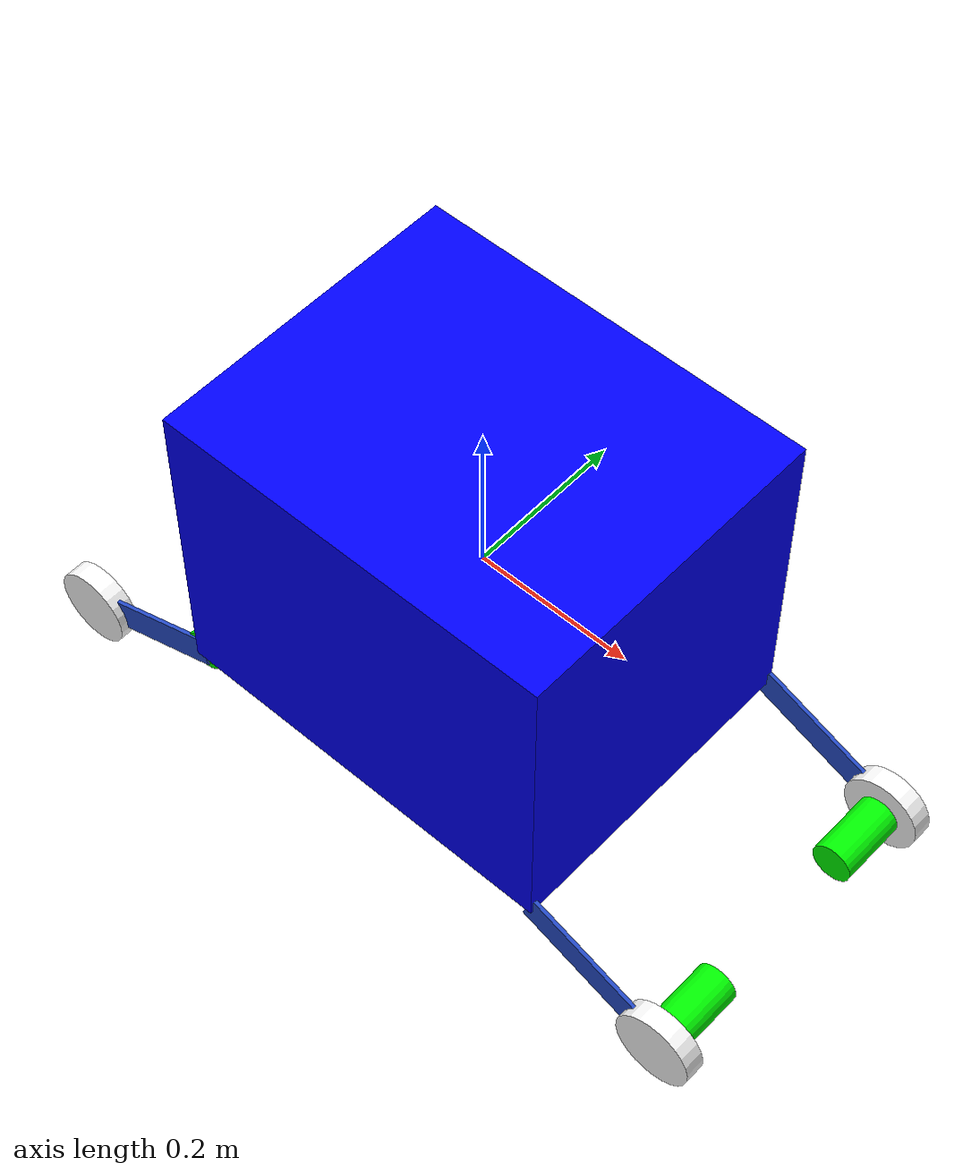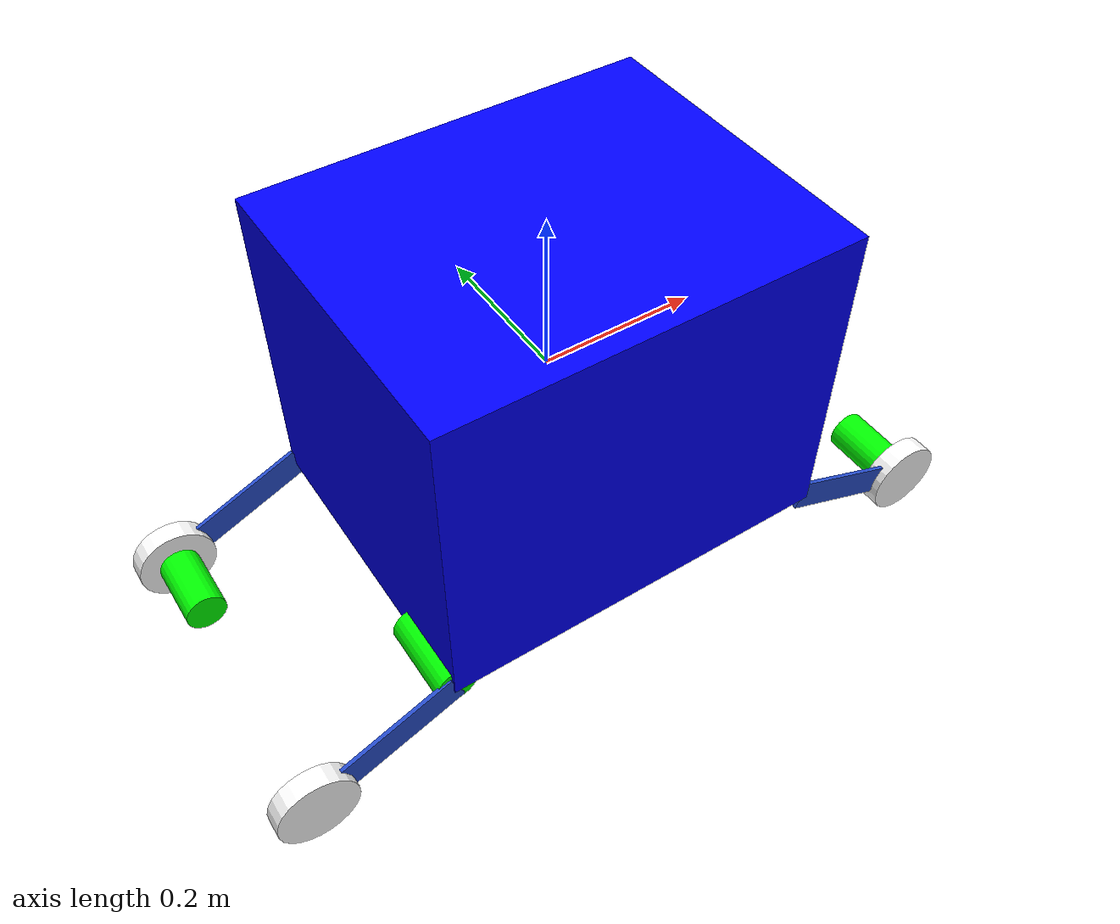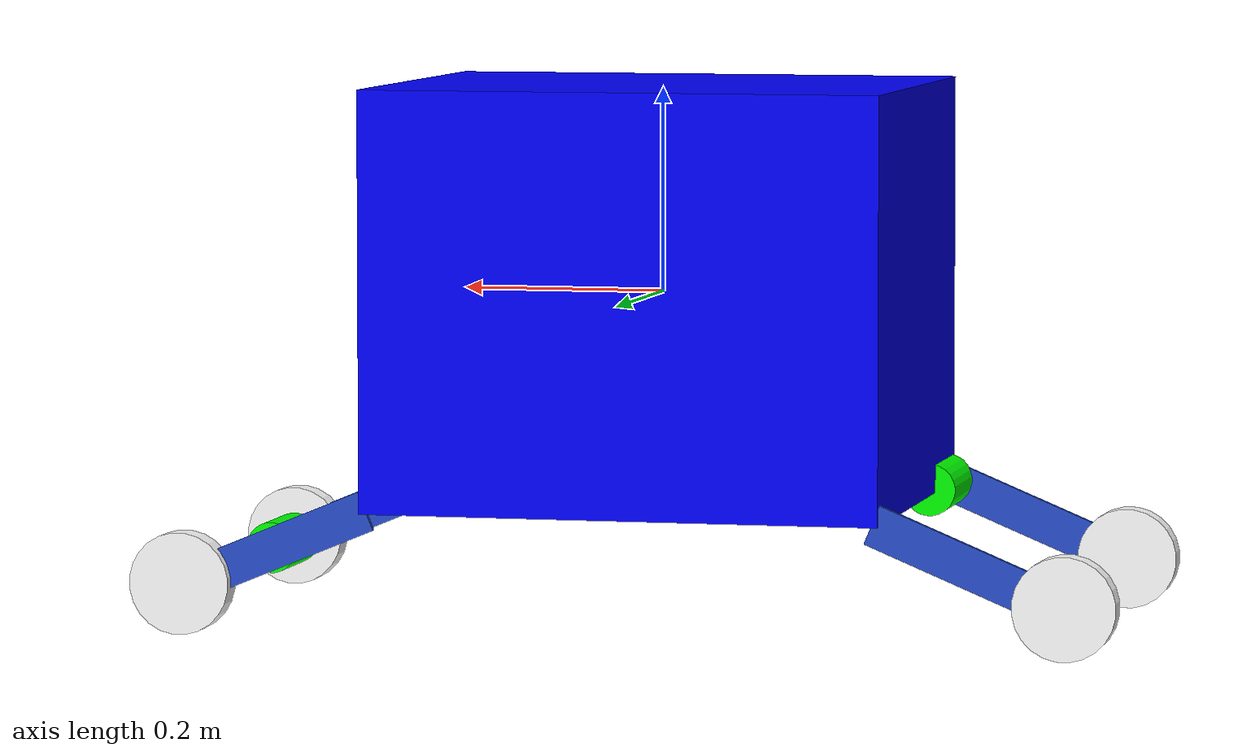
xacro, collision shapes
<?xml version="1.0"?>

<robot name="complete_M.A.R.S_prototype2" xmlns:xacro="http://www.ros.org/wiki/xacro">
<!--WHEELS-->
<xacro:property name="radius" value="0.05"/>
<xacro:property name="length" value="0.026"/>

<!--motors-->
<xacro:property name="radius_of_motor" value="0.026"/>
<xacro:property name="length_of_motor" value="0.10"/>

<!--MATERIAL COLORS -->
  <material name="blue">
    <color rgba="0 0 1 1"/>
  </material>

<material name="red">
    <color rgba="1 0 0 1"/>
  </material>

<material name="pink">
    <color rgba="0.8 0 1 0.5"/>
  </material>

    <material name="white">
    <color rgba="1 1 1 1"/>
  </material>

  <material name="green">
    <color rgba="0 1 0 1"/>
</material>

<gazebo reference="base_link_to_wheel1">
  <material>Gazebo/orange</material>
</gazebo>

<link name="base_link">        <!--dummy link -->
 <origin rpy="0 0 0" xyz="0 0 0.80"/>
 </link>

<!--joint :dummy and chassis-->

<joint name="dummy_link_to_base_link" type="fixed">
  <axis xyz="0 0 0"/>
<origin rpy="0 0 0" xyz="0 0 0"/>
    <parent link="base_link"/>
    <child link="dummy_link_chassis"/>
    </joint>

<!--Visual of the Link-->
  <link name="dummy_link_chassis">         <!--chassis link-->
    <visual>

    <geometry>

        <box size="0.5 0.40 0.40"/>
       </geometry>
  <!-- Setting up the origin of the link -->
      <origin rpy="0 0 0" xyz="0 0 0"/>
       <material name="blue"/>
    </visual>
<!--  COLLISION -->
    <collision>
      <geometry>
       <box size="0.51 0.41 0.41"/>

      </geometry>
      <origin rpy="0 0 0" xyz="0 0 0"/>
    </collision>
<!--  INERTIAL -->
    <inertial>
      <mass value="5.0"/>

      <inertia
          ixx="0.1333333" ixy="0.0" ixz="0.0"
          iyy="0.1708333" iyz="0.0"
          izz="0.1708333"
      />
      <origin rpy="0 0 0" xyz="0 0 0"/>
    </inertial>

  </link>

<!--HOLDER1 LEFT FRONT-->
 <link name="holder1">
 <visual>
 <origin rpy="1.57075 0 0" xyz="0.10 0 -0.0025"/>
 <geometry>
 <box size="0.2 0.04 0.005 "/>
 </geometry>
 <material name="Blue"/>
 </visual>
 <collision>
 <origin rpy="1.57075 0 0" xyz="0.10 0 -0.0025"/>
 <geometry>
 <box size="0.2 0.04 0.005 "/>
 </geometry>
 </collision>

<!-- Inertia of the HOLDER1 -->
<inertial>
      <mass value="0.09"/>

      <inertia
          ixx="0.7392092415" ixy="0.0" ixz="0.0"
          iyy="0.0003001875" iyz="0.0"
          izz="0.0003"
      />
      <origin rpy="1.57075 0 0" xyz="0.10 0 -0.0025"/>
    </inertial>
</link>

<joint name="holder1_to_base_link" type="revolute">
      <parent link="dummy_link_chassis"/>
      <child link="holder1"/>
      <origin xyz="0.25 0.20 -0.20" rpy="0 0 0"/>
      <axis xyz="0 1 0" />
      <limit effort="300" velocity="0.1" lower="0.52358" upper="0.261799" />
  </joint>
<!--PLANETARY MOTOR1-->
 <link name="motor1">
 <visual>
 <origin rpy="1.57075 0 0" xyz="0.10 0 0.0025"/>
 <geometry>
<cylinder radius="${radius_of_motor}" length="${length_of_motor}"/>
 </geometry>
 <material name="green"/>
 </visual>
 <collision>
 <origin rpy="1.57075 0 0" xyz="0.10 0 -0.0025"/>
 <geometry>
<cylinder radius="${radius_of_motor}" length="${length_of_motor}"/>
 </geometry>
 </collision>

<!-- Inertia of the motor1 -->
<inertial>
      <mass value="0.09"/>

      <inertia
          ixx="0.260166666667" ixy="0.0" ixz="0.0"
          iyy="0.260166666667" iyz="0.0"
          izz="0.4"
      />
      <origin rpy="1.57075 0 0" xyz="0.10 0 0.0025"/>
    </inertial>
</link>
<joint name="holder1_to_motor1" type="fixed">
      <parent link="holder1"/>
      <child link="motor1"/>
      <origin xyz="0.10 -0.05 0" rpy="0 0 0"/>
  </joint>

<!--WHEEL_1-->
<!--Visual of the Link-->
  <link name="wheel1">
    <visual>
      <geometry>
      <cylinder radius="${radius}" length="${length}"/>
      </geometry>
  <!-- Setting up the origin of the link -->
       <origin rpy="0 1.57075 1.57075" xyz="0 0.018 0"/>
        <material name="white"/>
    </visual>
     <collision>
<!--  COLLISION -->
     <origin rpy="0 1.57075 1.57075" xyz="0 0 0"/>
      <geometry>
         <cylinder radius="${radius}" length="${length}"/>
      </geometry>
    </collision>
<!--  INERTIAL -->
 <inertial>
      <origin xyz="0 0 0" rpy="0 1.5707 1.5707"/>
      <mass value="0.216"/>
      <cylinder_inertia m="0.216" r="0.05" h="0.026"/>
      <inertia
        ixx="0.000147168" ixy="0.0" ixz="0.0"
        iyy="0.000147168" iyz="0.0"
        izz="0.00027"/>
    </inertial>

  </link>

<joint name="holder1_to_wheel1" type="continuous">
  <axis xyz="0 1 0"/>
<origin rpy="0 0 0" xyz="0.20 0 0"/>
 <joint_properties damping="0.0" friction="0.0"/>
    <parent link="holder1"/>
    <child link="wheel1"/>

  </joint>

<!--HOLDER2 LEFT REAR-->
 <link name="holder2">
 <visual>
 <origin rpy="1.57075 0 0" xyz="-0.10 0 -0.0025"/>
 <geometry>
 <box size="0.2 0.04 0.005 "/>
 </geometry>
 <material name="Blue"/>
 </visual>
 <collision>
 <origin rpy="1.57075 0 0" xyz="-0.10 0 -0.0025"/>
 <geometry>
 <box size="0.2 0.04 0.005 "/>
 </geometry>
 </collision>

<!-- Inertia of the HOLDER 2 -->
<inertial>
      <mass value="0.09"/>

      <inertia
          ixx="0.7392092415" ixy="0.0" ixz="0.0"
          iyy="0.0003001875" iyz="0.0"
          izz="0.0003"
      />
      <origin rpy="1.57075 0 0" xyz="-0.10 0 -0.0025"/>
    </inertial>
</link>

<joint name="holder2_to_base_link" type="revolute">
      <parent link="dummy_link_chassis"/>
      <child link="holder2"/>
      <origin xyz="-0.25 0.20 -0.20" rpy="0 0 0"/>
      <axis xyz="0 1 0" />
      <limit effort="300" velocity="0.1" lower="-0.52358" upper="-0.261799" />
  </joint>

<!--PLANETARY MOTOR2-->
 <link name="motor2">
 <visual>
 <origin rpy="1.57075 0 0" xyz="-0.10 0 0.0025"/>
 <geometry>
<cylinder radius="${radius_of_motor}" length="${length_of_motor}"/>
 </geometry>
 <material name="green"/>
 </visual>
 <collision>
 <origin rpy="1.57075 0 0" xyz="-0.10 0 -0.0025"/>
 <geometry>
<cylinder radius="${radius_of_motor}" length="${length_of_motor}"/>
 </geometry>
 </collision>

<!-- Inertia of the motor2 -->
<inertial>
      <mass value="0.09"/>

      <inertia
          ixx="0.260166666667" ixy="0.0" ixz="0.0"
          iyy="0.260166666667" iyz="0.0"
          izz="0.4"
      />
      <origin rpy="1.57075 0 0" xyz="-0.10 0 0.0025"/>
    </inertial>
</link>
<joint name="holder2_to_motor2" type="fixed">
      <parent link="holder2"/>
      <child link="motor2"/>
      <origin xyz="-0.10 -0.05 0" rpy="0 0 0"/>
  </joint>

<!--WHEEL_2-->
<!--Visual of the Link-->
  <link name="wheel2">
    <visual>
      <geometry>
      <cylinder radius="${radius}" length="${length}"/>
      </geometry>
  <!-- Setting up the origin of the link -->
       <origin rpy="0 1.57075 1.57075" xyz="0 0.018 0"/>
        <material name="white"/>
    </visual>
     <collision>
<!--  COLLISION -->
     <origin rpy="0 1.57075 1.57075" xyz="0 0 0"/>
      <geometry>
         <cylinder radius="${radius}" length="${length}"/>
      </geometry>
    </collision>
<!--  INERTIAL -->
 <inertial>
      <origin xyz="0 0 0" rpy="0 1.5707 1.5707"/>
      <mass value="0.216"/>
      <cylinder_inertia m="0.216" r="0.05" h="0.026"/>
      <inertia
        ixx="0.000147168" ixy="0.0" ixz="0.0"
        iyy="0.000147168" iyz="0.0"
        izz="0.00027"/>
    </inertial>

  </link>

<joint name="holder2_to_wheel2" type="continuous">
  <axis xyz="0 1 0"/>
<origin rpy="0 0 0" xyz="-0.20 0 0"/>
 <joint_properties damping="0.0" friction="0.0"/>
    <parent link="holder2"/>
    <child link="wheel2"/>

  </joint>
<!--HOLDER3 LEFT FRONT-->
 <link name="holder3">
 <visual>
 <origin rpy="1.57075 0 0" xyz="0.10 0 -0.0025"/>
 <geometry>
 <box size="0.2 0.04 0.005 "/>
 </geometry>
 <material name="Blue"/>
 </visual>
 <collision>
 <origin rpy="1.57075 0 0" xyz="0.10 0 -0.0025"/>
 <geometry>
 <box size="0.2 0.04 0.005 "/>
 </geometry>
 </collision>

<!-- Inertia of the HOLDER3 -->
<inertial>
      <mass value="0.09"/>

      <inertia
          ixx="0.7392092415" ixy="0.0" ixz="0.0"
          iyy="0.0003001875" iyz="0.0"
          izz="0.0003"
      />
      <origin rpy="1.57075 0 0" xyz="0.10 0 -0.0025"/>
    </inertial>
</link>

<joint name="holder3_to_base_link" type="revolute">
      <parent link="dummy_link_chassis"/>
      <child link="holder3"/>
      <origin xyz="0.25 -0.20 -0.20" rpy="0 0 0"/>
      <axis xyz="0 1 0" />
      <limit effort="300" velocity="0.1" lower="0.52358" upper="0.261799" />
  </joint>
<!--PLANETARY MOTOR3-->
 <link name="motor3">
 <visual>
 <origin rpy="1.57075 0 0" xyz="0.10 0 0.0025"/>
 <geometry>
<cylinder radius="${radius_of_motor}" length="${length_of_motor}"/>
 </geometry>
 <material name="green"/>
 </visual>
 <collision>
 <origin rpy="1.57075 0 0" xyz="0.10 0 -0.0025"/>
 <geometry>
<cylinder radius="${radius_of_motor}" length="${length_of_motor}"/>
 </geometry>
 </collision>

<!-- Inertia of the motor3 -->
<inertial>
      <mass value="0.09"/>

      <inertia
          ixx="0.260166666667" ixy="0.0" ixz="0.0"
          iyy="0.260166666667" iyz="0.0"
          izz="0.4"
      />
      <origin rpy="1.57075 0 0" xyz="0.10 0 0.0025"/>
    </inertial>
</link>
<joint name="holder3_to_motor3" type="fixed">
      <parent link="holder3"/>
      <child link="motor3"/>
      <origin xyz="0.10 0.05 0" rpy="0 0 0"/>
  </joint>

<!--WHEEL_3-->
<!--Visual of the Link-->
  <link name="wheel3">
    <visual>
      <geometry>
      <cylinder radius="${radius}" length="${length}"/>
      </geometry>
  <!-- Setting up the origin of the link -->
       <origin rpy="0 1.57075 1.57075" xyz="0 -0.018 0"/>
        <material name="white"/>
    </visual>
     <collision>
<!--  COLLISION -->
     <origin rpy="0 1.57075 1.57075" xyz="0 0 0"/>
      <geometry>
         <cylinder radius="${radius}" length="${length}"/>
      </geometry>
    </collision>
<!--  INERTIAL -->
 <inertial>
      <origin xyz="0 0 0" rpy="0 1.5707 1.5707"/>
      <mass value="0.216"/>
      <cylinder_inertia m="0.216" r="0.05" h="0.026"/>
      <inertia
        ixx="0.000147168" ixy="0.0" ixz="0.0"
        iyy="0.000147168" iyz="0.0"
        izz="0.00027"/>
    </inertial>

  </link>

<joint name="holder3_to_wheel3" type="continuous">
  <axis xyz="0 1 0"/>
<origin rpy="0 0 0" xyz="0.20 0 0"/>
 <joint_properties damping="0.0" friction="0.0"/>
    <parent link="holder3"/>
    <child link="wheel3"/>

  </joint>

<!--HOLDER4 LEFT FRONT-->
 <link name="holder4">
 <visual>
 <origin rpy="1.57075 0 0" xyz="-0.10 0 -0.0025"/>
 <geometry>
 <box size="0.2 0.04 0.005 "/>
 </geometry>
 <material name="Blue"/>
 </visual>
 <collision>
 <origin rpy="1.57075 0 0" xyz="-0.10 0 -0.0025"/>
 <geometry>
 <box size="0.2 0.04 0.005 "/>
 </geometry>
 </collision>

<!-- Inertia of the HOLDER4 -->
<inertial>
      <mass value="0.09"/>

      <inertia
          ixx="0.7392092415" ixy="0.0" ixz="0.0"
          iyy="0.0003001875" iyz="0.0"
          izz="0.0003"
      />
      <origin rpy="1.57075 0 0" xyz="-0.10 0 -0.0025"/>
    </inertial>
</link>

<joint name="holder4_to_base_link" type="revolute">
      <parent link="dummy_link_chassis"/>
      <child link="holder4"/>
      <origin xyz="-0.25 -0.20 -0.20" rpy="0 0 0"/>
      <axis xyz="0 1 0" />
      <limit effort="300" velocity="0.1" lower="-0.52358" upper="-0.261799" />
  </joint>
<!--PLANETARY MOTOR4-->
 <link name="motor4">
 <visual>
 <origin rpy="1.57075 0 0" xyz="-0.10 0 0.0025"/>
 <geometry>
<cylinder radius="${radius_of_motor}" length="${length_of_motor}"/>
 </geometry>
 <material name="green"/>
 </visual>
 <collision>
 <origin rpy="1.57075 0 0" xyz="0.10 0 -0.0025"/>
 <geometry>
<cylinder radius="${radius_of_motor}" length="${length_of_motor}"/>
 </geometry>
 </collision>

<!-- Inertia of the motor4 -->
<inertial>
      <mass value="0.09"/>

      <inertia
          ixx="0.260166666667" ixy="0.0" ixz="0.0"
          iyy="0.260166666667" iyz="0.0"
          izz="0.4"
      />
      <origin rpy="1.57075 0 0" xyz="-0.10 0 0.0025"/>
    </inertial>
</link>
<joint name="holder4_to_motor4" type="fixed">
      <parent link="holder4"/>
      <child link="motor4"/>
      <origin xyz="-0.10 0.05 0" rpy="0 0 0"/>
  </joint>

<!--WHEEL_4-->
<!--Visual of the Link-->
  <link name="wheel4">
    <visual>
      <geometry>
      <cylinder radius="${radius}" length="${length}"/>
      </geometry>
  <!-- Setting up the origin of the link -->
       <origin rpy="0 1.57075 1.57075" xyz="0 -0.018 0"/>
        <material name="white"/>
    </visual>
     <collision>
<!--  COLLISION -->
     <origin rpy="0 1.57075 1.57075" xyz="0 0 0"/>
      <geometry>
         <cylinder radius="${radius}" length="${length}"/>
      </geometry>
    </collision>
<!--  INERTIAL -->
 <inertial>
      <origin xyz="0 0 0" rpy="0 1.5707 1.5707"/>
      <mass value="0.216"/>
      <cylinder_inertia m="0.216" r="0.05" h="0.026"/>
      <inertia
        ixx="0.000147168" ixy="0.0" ixz="0.0"
        iyy="0.000147168" iyz="0.0"
        izz="0.00027"/>
    </inertial>

  </link>

<joint name="holder4_to_wheel4" type="continuous">
  <axis xyz="0 1 0"/>
<origin rpy="0 0 0" xyz="-0.20 0 0"/>
 <joint_properties damping="0.0" friction="0.0"/>
    <parent link="holder4"/>
    <child link="wheel4"/>

  </joint>

  <link name="kinect">

    <visual>
      <geometry>
        <mesh filename="package://urdf_package/meshes/kinect.dae"/>
       </geometry>
      <origin rpy="0 0 0" xyz="0 0 0"/>

    </visual>
    </link>

     <joint name="base_link_to_kinect" type="fixed">
  <axis xyz="0 0 0"/>
<origin rpy="0 0 1.5707" xyz="0.30 0 0.5631"/>

    <parent link="dummy_link_chassis"/>
    <child link="kinect"/>

  </joint>

<!-- GAZEBO PHYSICAL PROPERTIES-->
 <gazebo reference="base_link_to_wheel1">
      <mu1 value="200.0"/>
      <mu2 value="100.0"/>
      <kp value="10000000.0" />
      <kd value="1.0" />
      <material>Gazebo/Grey</material>
    </gazebo>
<gazebo reference="base_link_to_wheel2">
      <mu1 value="200.0"/>
      <mu2 value="100.0"/>
      <kp value="10000000.0" />
      <kd value="1.0" />
      <material>Gazebo/Grey</material>
    </gazebo>
    <gazebo reference="base_link_to_wheel3">
      <mu1 value="200.0"/>
      <mu2 value="100.0"/>
      <kp value="10000000.0" />
      <kd value="1.0" />
      <material>Gazebo/Grey</material>
    </gazebo>
    <gazebo reference="base_link_to_wheel4">
      <mu1 value="200.0"/>
      <mu2 value="100.0"/>
      <kp value="10000000.0" />
      <kd value="1.0" />
      <material>Gazebo/Grey</material>
    </gazebo>

<!-- wheel 1 transmission tag-->

<transmission name="base_to_wheel1">
  <type>transmission_interface/SimpleTransmission</type>
  <actuator name="motor1">
  <mechanicalReduction>1</mechanicalReduction>
     <hardwareInterface>EffortJointInterface</hardwareInterface>

</actuator>
<joint name="base_link_to_wheel1">
   <hardwareInterface>hardware_interface/VelocityJointInterface</hardwareInterface>
</joint>
</transmission>

<!-- wheel 2 transmission tag-->

<transmission name="base_to_wheel2">
  <type>transmission_interface/SimpleTransmission</type>
  <actuator name="motor2">
  <mechanicalReduction>1</mechanicalReduction>
 <hardwareInterface>EffortJointInterface</hardwareInterface>

</actuator>
<joint name="base_link_to_wheel2">
   <hardwareInterface>hardware_interface/VelocityJointInterface</hardwareInterface>
</joint>
</transmission>

<!-- wheel 3 transmission tag-->

<transmission name="base_to_wheel3">
  <type>transmission_interface/SimpleTransmission</type>
  <actuator name="motor3">
  <mechanicalReduction>1</mechanicalReduction>
   <hardwareInterface>EffortJointInterface</hardwareInterface>

</actuator>
<joint name="base_link_to_wheel3">
   <hardwareInterface>hardware_interface/VelocityJointInterface</hardwareInterface>
</joint>
</transmission>

<!-- wheel 4 transmission tag-->

<transmission name="base_to_wheel4">
  <type>transmission_interface/SimpleTransmission</type>
  <actuator name="motor4">
  <mechanicalReduction>1</mechanicalReduction>
   <hardwareInterface>EffortJointInterface</hardwareInterface>

</actuator>
<joint name="base_link_to_wheel4">
   <hardwareInterface>hardware_interface/VelocityJointInterface</hardwareInterface>
</joint>
</transmission>

<gazebo>
<plugin name="gazbo_ros_control" filename="libgazebo_ros_control.so">
<robotNamespace>/</robotNamespace>
</plugin>

</gazebo>

 <!-- camera -->
  <gazebo reference="camera_link">
    <sensor type="depth" name="camera1">
        <always_on>1</always_on>
        <visualize>true</visualize>
        <camera>
            <horizontal_fov>1.047</horizontal_fov>
            <image>
                <width>640</width>
                <height>480</height>
                <format>R8G8B8</format>
            </image>
            <depth_camera>

            </depth_camera>
            <clip>
                <near>0.1</near>
                <far>100</far>
            </clip>
        </camera>
             <plugin name="camera_controller" filename="libgazebo_ros_openni_kinect.so">
             <alwaysOn>true</alwaysOn>
                <updateRate>10.0</updateRate>
                <cameraName>camera</cameraName>
                <frameName>camera_link</frameName>
            <imageTopicName>rgb/image_raw</imageTopicName>
            <depthImageTopicName>depth/image_raw</depthImageTopicName>
            <pointCloudTopicName>depth/points</pointCloudTopicName>
            <cameraInfoTopicName>rgb/camera_info</cameraInfoTopicName>
            <depthImageCameraInfoTopicName>depth/camera_info</depthImageCameraInfoTopicName>
            <pointCloudCutoff>0.4</pointCloudCutoff>
                <hackBaseline>0.07</hackBaseline>
                <distortionK1>0.0</distortionK1>
                <distortionK2>0.0</distortionK2>
                <distortionK3>0.0</distortionK3>
                <distortionT1>0.0</distortionT1>
                <distortionT2>0.0</distortionT2>
            <CxPrime>0.0</CxPrime>
            <Cx>0.0</Cx>
            <Cy>0.0</Cy>
            <focalLength>0.0</focalLength>
            </plugin>
    </sensor>
  </gazebo>

</robot>
